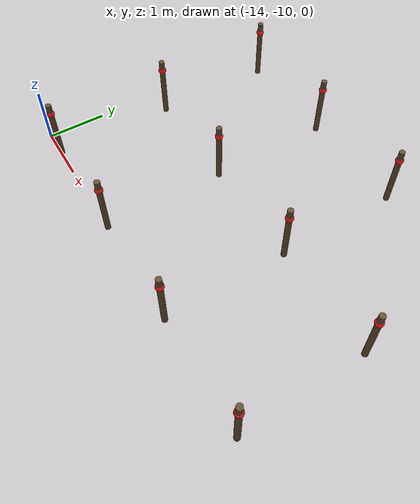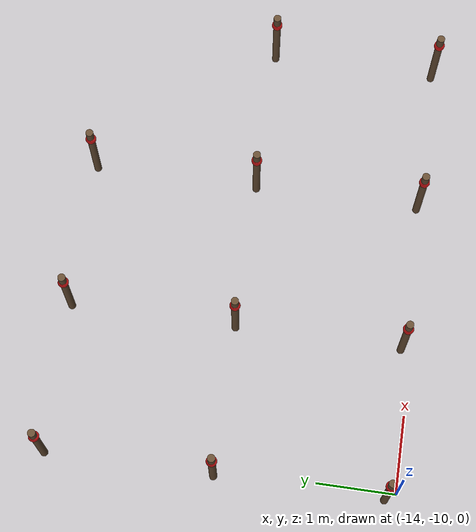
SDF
<sdf version="1.9">
 <world name="empty">
  <model name="row_minus4_post_neg_5">
   <static>true</static>
   <pose>-10 -5.5 -0.5 0 0 0</pose>
   <link name="vine_link">
    <collision name="post_collision">
     <geometry><cylinder><radius>0.05</radius><length>1.2</length></cylinder></geometry>
     <pose>0 0 0.6 0 0 0</pose>
    </collision>
    <visual name="post_visual">
     <geometry><cylinder><radius>0.05</radius><length>1.2</length></cylinder></geometry>
     <pose>0 0 0.6 0 0 0</pose>
     <material><diffuse>0.4 0.3 0.2 1</diffuse><ambient>0.4 0.3 0.2 1</ambient></material>
    </visual>
    <collision name="ball_collision">
     <geometry><sphere><radius>0.07</radius></sphere></geometry>
     <pose>0 0 1.0 0 0 0</pose>
    </collision>
    <visual name="ball_visual">
     <geometry><sphere><radius>0.07</radius></sphere></geometry>
     <pose>0 0 1.0 0 0 0</pose>
     <material><diffuse>0.9 0.1 0.1 1</diffuse><ambient>0.9 0.1 0.1 1</ambient></material>
    </visual>
   </link>
  </model>
  <model name="row_minus4_post_neg_6">
   <static>true</static>
   <pose>-12 -5.5 -0.5 0 0 0</pose>
   <link name="vine_link">
    <collision name="post_collision">
     <geometry><cylinder><radius>0.05</radius><length>1.2</length></cylinder></geometry>
     <pose>0 0 0.6 0 0 0</pose>
    </collision>
    <visual name="post_visual">
     <geometry><cylinder><radius>0.05</radius><length>1.2</length></cylinder></geometry>
     <pose>0 0 0.6 0 0 0</pose>
     <material><diffuse>0.4 0.3 0.2 1</diffuse><ambient>0.4 0.3 0.2 1</ambient></material>
    </visual>
    <collision name="ball_collision">
     <geometry><sphere><radius>0.07</radius></sphere></geometry>
     <pose>0 0 1.0 0 0 0</pose>
    </collision>
    <visual name="ball_visual">
     <geometry><sphere><radius>0.07</radius></sphere></geometry>
     <pose>0 0 1.0 0 0 0</pose>
     <material><diffuse>0.9 0.1 0.1 1</diffuse><ambient>0.9 0.1 0.1 1</ambient></material>
    </visual>
   </link>
  </model>
  <model name="row_minus4_post_neg_7">
   <static>true</static>
   <pose>-14 -5.5 -0.5 0 0 0</pose>
   <link name="vine_link">
    <collision name="post_collision">
     <geometry><cylinder><radius>0.05</radius><length>1.2</length></cylinder></geometry>
     <pose>0 0 0.6 0 0 0</pose>
    </collision>
    <visual name="post_visual">
     <geometry><cylinder><radius>0.05</radius><length>1.2</length></cylinder></geometry>
     <pose>0 0 0.6 0 0 0</pose>
     <material><diffuse>0.4 0.3 0.2 1</diffuse><ambient>0.4 0.3 0.2 1</ambient></material>
    </visual>
    <collision name="ball_collision">
     <geometry><sphere><radius>0.07</radius></sphere></geometry>
     <pose>0 0 1.0 0 0 0</pose>
    </collision>
    <visual name="ball_visual">
     <geometry><sphere><radius>0.07</radius></sphere></geometry>
     <pose>0 0 1.0 0 0 0</pose>
     <material><diffuse>0.9 0.1 0.1 1</diffuse><ambient>0.9 0.1 0.1 1</ambient></material>
    </visual>
   </link>
  </model>
  <model name="row_minus5_post_neg_4">
   <static>true</static>
   <pose>-8 -7.7 -0.5 0 0 0</pose>
   <link name="vine_link">
    <collision name="post_collision">
     <geometry><cylinder><radius>0.05</radius><length>1.2</length></cylinder></geometry>
     <pose>0 0 0.6 0 0 0</pose>
    </collision>
    <visual name="post_visual">
     <geometry><cylinder><radius>0.05</radius><length>1.2</length></cylinder></geometry>
     <pose>0 0 0.6 0 0 0</pose>
     <material><diffuse>0.4 0.3 0.2 1</diffuse><ambient>0.4 0.3 0.2 1</ambient></material>
    </visual>
    <collision name="ball_collision">
     <geometry><sphere><radius>0.07</radius></sphere></geometry>
     <pose>0 0 1.0 0 0 0</pose>
    </collision>
    <visual name="ball_visual">
     <geometry><sphere><radius>0.07</radius></sphere></geometry>
     <pose>0 0 1.0 0 0 0</pose>
     <material><diffuse>0.9 0.1 0.1 1</diffuse><ambient>0.9 0.1 0.1 1</ambient></material>
    </visual>
   </link>
  </model>
  <model name="row_minus5_post_neg_5">
   <static>true</static>
   <pose>-10 -7.7 -0.5 0 0 0</pose>
   <link name="vine_link">
    <collision name="post_collision">
     <geometry><cylinder><radius>0.05</radius><length>1.2</length></cylinder></geometry>
     <pose>0 0 0.6 0 0 0</pose>
    </collision>
    <visual name="post_visual">
     <geometry><cylinder><radius>0.05</radius><length>1.2</length></cylinder></geometry>
     <pose>0 0 0.6 0 0 0</pose>
     <material><diffuse>0.4 0.3 0.2 1</diffuse><ambient>0.4 0.3 0.2 1</ambient></material>
    </visual>
    <collision name="ball_collision">
     <geometry><sphere><radius>0.07</radius></sphere></geometry>
     <pose>0 0 1.0 0 0 0</pose>
    </collision>
    <visual name="ball_visual">
     <geometry><sphere><radius>0.07</radius></sphere></geometry>
     <pose>0 0 1.0 0 0 0</pose>
     <material><diffuse>0.9 0.1 0.1 1</diffuse><ambient>0.9 0.1 0.1 1</ambient></material>
    </visual>
   </link>
  </model>
  <model name="row_minus5_post_neg_6">
   <static>true</static>
   <pose>-12 -7.7 -0.5 0 0 0</pose>
   <link name="vine_link">
    <collision name="post_collision">
     <geometry><cylinder><radius>0.05</radius><length>1.2</length></cylinder></geometry>
     <pose>0 0 0.6 0 0 0</pose>
    </collision>
    <visual name="post_visual">
     <geometry><cylinder><radius>0.05</radius><length>1.2</length></cylinder></geometry>
     <pose>0 0 0.6 0 0 0</pose>
     <material><diffuse>0.4 0.3 0.2 1</diffuse><ambient>0.4 0.3 0.2 1</ambient></material>
    </visual>
    <collision name="ball_collision">
     <geometry><sphere><radius>0.07</radius></sphere></geometry>
     <pose>0 0 1.0 0 0 0</pose>
    </collision>
    <visual name="ball_visual">
     <geometry><sphere><radius>0.07</radius></sphere></geometry>
     <pose>0 0 1.0 0 0 0</pose>
     <material><diffuse>0.9 0.1 0.1 1</diffuse><ambient>0.9 0.1 0.1 1</ambient></material>
    </visual>
   </link>
  </model>
  <model name="row_minus5_post_neg_7">
   <static>true</static>
   <pose>-14 -7.7 -0.5 0 0 0</pose>
   <link name="vine_link">
    <collision name="post_collision">
     <geometry><cylinder><radius>0.05</radius><length>1.2</length></cylinder></geometry>
     <pose>0 0 0.6 0 0 0</pose>
    </collision>
    <visual name="post_visual">
     <geometry><cylinder><radius>0.05</radius><length>1.2</length></cylinder></geometry>
     <pose>0 0 0.6 0 0 0</pose>
     <material><diffuse>0.4 0.3 0.2 1</diffuse><ambient>0.4 0.3 0.2 1</ambient></material>
    </visual>
    <collision name="ball_collision">
     <geometry><sphere><radius>0.07</radius></sphere></geometry>
     <pose>0 0 1.0 0 0 0</pose>
    </collision>
    <visual name="ball_visual">
     <geometry><sphere><radius>0.07</radius></sphere></geometry>
     <pose>0 0 1.0 0 0 0</pose>
     <material><diffuse>0.9 0.1 0.1 1</diffuse><ambient>0.9 0.1 0.1 1</ambient></material>
    </visual>
   </link>
  </model>
  <model name="row_minus6_post_neg_4">
   <static>true</static>
   <pose>-8 -9.9 -0.5 0 0 0</pose>
   <link name="vine_link">
    <collision name="post_collision">
     <geometry><cylinder><radius>0.05</radius><length>1.2</length></cylinder></geometry>
     <pose>0 0 0.6 0 0 0</pose>
    </collision>
    <visual name="post_visual">
     <geometry><cylinder><radius>0.05</radius><length>1.2</length></cylinder></geometry>
     <pose>0 0 0.6 0 0 0</pose>
     <material><diffuse>0.4 0.3 0.2 1</diffuse><ambient>0.4 0.3 0.2 1</ambient></material>
    </visual>
    <collision name="ball_collision">
     <geometry><sphere><radius>0.07</radius></sphere></geometry>
     <pose>0 0 1.0 0 0 0</pose>
    </collision>
    <visual name="ball_visual">
     <geometry><sphere><radius>0.07</radius></sphere></geometry>
     <pose>0 0 1.0 0 0 0</pose>
     <material><diffuse>0.9 0.1 0.1 1</diffuse><ambient>0.9 0.1 0.1 1</ambient></material>
    </visual>
   </link>
  </model>
  <model name="row_minus6_post_neg_5">
   <static>true</static>
   <pose>-10 -9.9 -0.5 0 0 0</pose>
   <link name="vine_link">
    <collision name="post_collision">
     <geometry><cylinder><radius>0.05</radius><length>1.2</length></cylinder></geometry>
     <pose>0 0 0.6 0 0 0</pose>
    </collision>
    <visual name="post_visual">
     <geometry><cylinder><radius>0.05</radius><length>1.2</length></cylinder></geometry>
     <pose>0 0 0.6 0 0 0</pose>
     <material><diffuse>0.4 0.3 0.2 1</diffuse><ambient>0.4 0.3 0.2 1</ambient></material>
    </visual>
    <collision name="ball_collision">
     <geometry><sphere><radius>0.07</radius></sphere></geometry>
     <pose>0 0 1.0 0 0 0</pose>
    </collision>
    <visual name="ball_visual">
     <geometry><sphere><radius>0.07</radius></sphere></geometry>
     <pose>0 0 1.0 0 0 0</pose>
     <material><diffuse>0.9 0.1 0.1 1</diffuse><ambient>0.9 0.1 0.1 1</ambient></material>
    </visual>
   </link>
  </model>
  <model name="row_minus6_post_neg_6">
   <static>true</static>
   <pose>-12 -9.9 -0.5 0 0 0</pose>
   <link name="vine_link">
    <collision name="post_collision">
     <geometry><cylinder><radius>0.05</radius><length>1.2</length></cylinder></geometry>
     <pose>0 0 0.6 0 0 0</pose>
    </collision>
    <visual name="post_visual">
     <geometry><cylinder><radius>0.05</radius><length>1.2</length></cylinder></geometry>
     <pose>0 0 0.6 0 0 0</pose>
     <material><diffuse>0.4 0.3 0.2 1</diffuse><ambient>0.4 0.3 0.2 1</ambient></material>
    </visual>
    <collision name="ball_collision">
     <geometry><sphere><radius>0.07</radius></sphere></geometry>
     <pose>0 0 1.0 0 0 0</pose>
    </collision>
    <visual name="ball_visual">
     <geometry><sphere><radius>0.07</radius></sphere></geometry>
     <pose>0 0 1.0 0 0 0</pose>
     <material><diffuse>0.9 0.1 0.1 1</diffuse><ambient>0.9 0.1 0.1 1</ambient></material>
    </visual>
   </link>
  </model>
  <model name="row_minus6_post_neg_7">
   <static>true</static>
   <pose>-14 -9.9 -0.5 0 0 0</pose>
   <link name="vine_link">
    <collision name="post_collision">
     <geometry><cylinder><radius>0.05</radius><length>1.2</length></cylinder></geometry>
     <pose>0 0 0.6 0 0 0</pose>
    </collision>
    <visual name="post_visual">
     <geometry><cylinder><radius>0.05</radius><length>1.2</length></cylinder></geometry>
     <pose>0 0 0.6 0 0 0</pose>
     <material><diffuse>0.4 0.3 0.2 1</diffuse><ambient>0.4 0.3 0.2 1</ambient></material>
    </visual>
    <collision name="ball_collision">
     <geometry><sphere><radius>0.07</radius></sphere></geometry>
     <pose>0 0 1.0 0 0 0</pose>
    </collision>
    <visual name="ball_visual">
     <geometry><sphere><radius>0.07</radius></sphere></geometry>
     <pose>0 0 1.0 0 0 0</pose>
     <material><diffuse>0.9 0.1 0.1 1</diffuse><ambient>0.9 0.1 0.1 1</ambient></material>
    </visual>
   </link>
  </model>
 </world>
</sdf>
